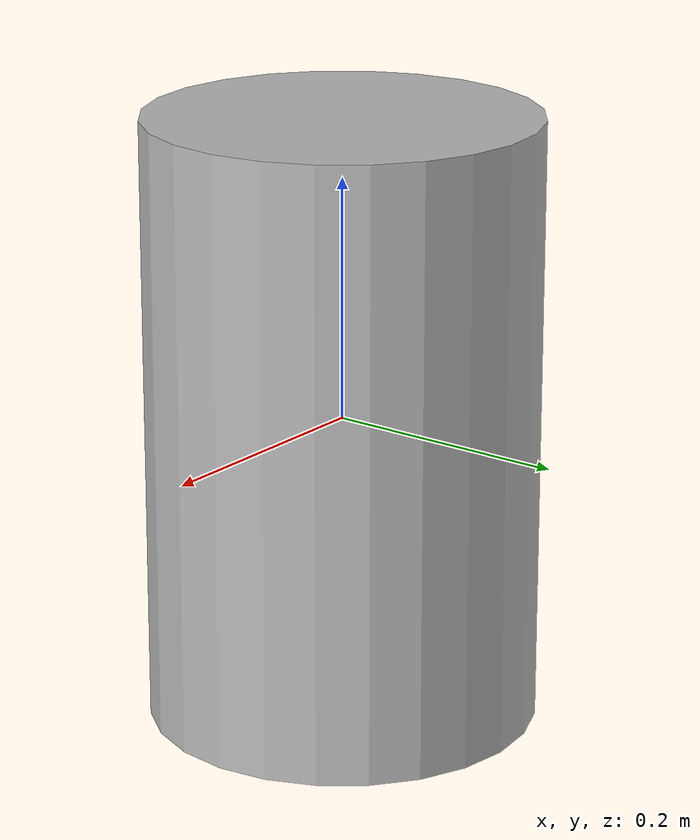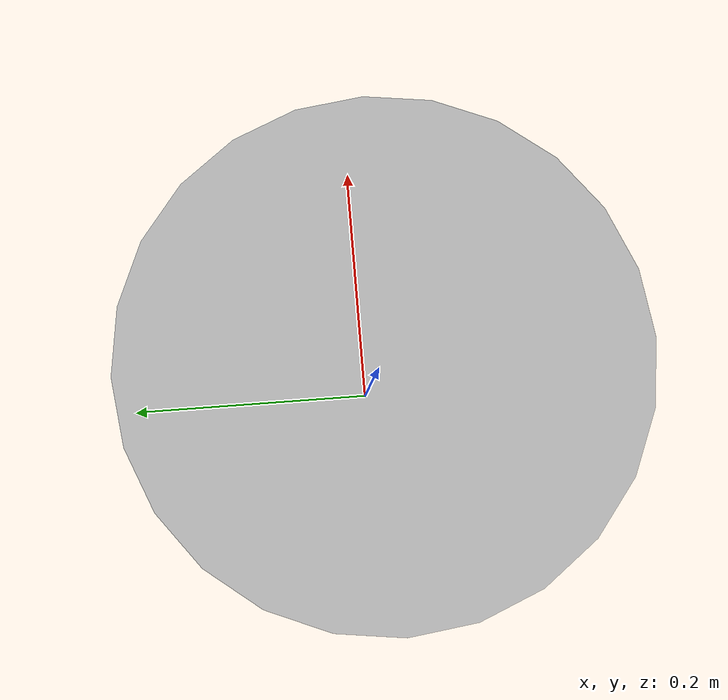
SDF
<?xml version='1.0'?>
<sdf version='1.6'>
    <model name="obstacle2">
      <link name="link_obstacle2">
        <collision name="collision">
          <geometry>
            <cylinder>
              <radius>0.16</radius>
              <length>0.50</length>
            </cylinder>
          </geometry>
        </collision>

        <visual name="visual">
          <geometry>
            <cylinder>
              <radius>0.16</radius>
              <length>0.50</length>
            </cylinder>
          </geometry>
        </visual>
      </link>
      <plugin name="p3d_base_controller_obstacle2" filename="libgazebo_ros_p3d.so">
        <ros>
          <namespace>/obstacle</namespace>
          <remapping>odom:=odom</remapping>
        </ros>
        <always_on>true</always_on>
        <update_rate>50.0</update_rate>
        <body_name>link_obstacle2</body_name>
        <topic_name>odom_obs</topic_name>
        <gaussian_noise>0.0</gaussian_noise>
        <frame_name>world</frame_name>
        <xyz_offset>0 0 0</xyz_offset>
        <rpy_offset>0 0 0</rpy_offset>
      </plugin>
      <plugin name="object_controller" filename="libgazebo_ros_planar_move.so">
        <ros>
          <namespace>/obstacle2</namespace>
          <remapping>cmd_vel:=cmd_vel</remapping>
        </ros>
      </plugin>
      <plugin name="pose_publisher" filename="libgazebo_ros_p3d.so">
        <frameName>world</frameName>
        <ros>
          <namespace>/obstacle2</namespace>
          <remapping>pose:=pose</remapping>
        </ros>
        <updateRate>10.0</updateRate>
      </plugin>
    </model>
</sdf>
